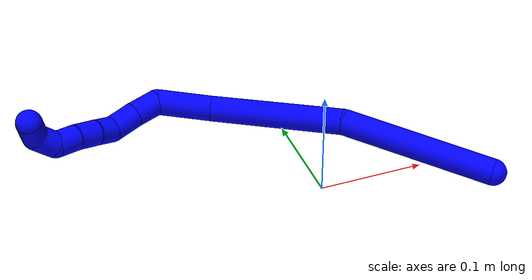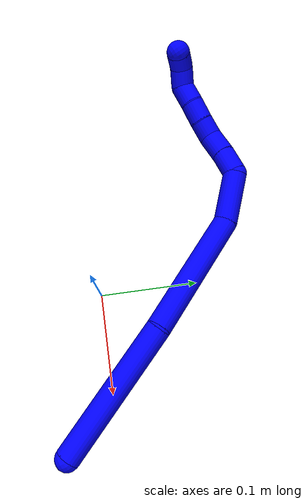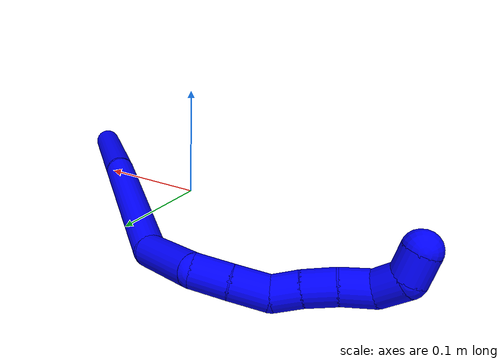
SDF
<sdf version="1.7">
 <world name="default">
  <plugin name="TubeGeneratorPlugin" filename="libtube_generator_plugin.so"/>
  <model name="photoneo_s_sensor">
   <static>1</static>
   <pose>0 0 2 1.57079 1.57079 3.14159</pose>
   <link name="link">
    <inertial><mass>0.1</mass></inertial>
    <sensor name="sensor" type="depth">
     <update_rate>30</update_rate>
     <camera>
      <horizontal_fov>1.22</horizontal_fov>
      <image><width>1920</width><height>1200</height><format>B8G8R8</format></image>
      <clip><near>0.1</near><far>4</far></clip>
      <depth_camera><output>points</output></depth_camera>
     </camera>
     <plugin name="camera_plugin" filename="libgazebo_ros_depth_camera.so">
      <baseline>0.2</baseline>
      <alwaysOn>1</alwaysOn>
      <updateRate>0.0</updateRate>
      <cameraName>camera_ir</cameraName>
      <imageTopicName>/camera/color/image_raw</imageTopicName>
      <cameraInfoTopicName>/camera/color/camera_info</cameraInfoTopicName>
      <depthImageTopicName>/camera/depth/image_raw</depthImageTopicName>
      <depthImageCameraInfoTopicName>/camera/depth/camera_info</depthImageCameraInfoTopicName>
      <pointCloudTopicName>/camera/depth/points</pointCloudTopicName>
      <frameName>fr_optical</frameName>
      <pointCloudCutoff>0.1</pointCloudCutoff>
      <pointCloudCutoffMax>2.0</pointCloudCutoffMax>
      <distortionK1>0</distortionK1>
      <distortionK2>0</distortionK2>
      <distortionK3>0</distortionK3>
      <distortionT1>0</distortionT1>
      <distortionT2>0</distortionT2>
      <CxPrime>0</CxPrime>
      <Cx>0</Cx>
      <Cy>0</Cy>
      <focalLength>0</focalLength>
      <hackBaseline>0</hackBaseline>
     </plugin>
    </sensor>
   </link>
  </model>
  <gravity>0 0 -9.8</gravity>
  <magnetic_field>6e-06 2.3e-05 -4.2e-05</magnetic_field>
  <atmosphere type="adiabatic"/>
  <physics name="default_physics" default="0" type="ode">
   <max_step_size>0.003</max_step_size>
   <real_time_factor>1</real_time_factor>
   <real_time_update_rate>1000</real_time_update_rate>
   <max_contacts>10000</max_contacts>
   <ode>
    <solver>
     <type>quick</type>
     <iters>100</iters>
     <sor>1.3</sor>
     <use_dynamic_moi_rescaling>0</use_dynamic_moi_rescaling>
    </solver>
    <constraints>
     <contact_max_correcting_vel>0</contact_max_correcting_vel>
     <contact_surface_layer>0.001</contact_surface_layer>
     <cfm>0</cfm>
     <erp>0.2</erp>
    </constraints>
   </ode>
  </physics>
  <scene><ambient>0.4 0.4 0.4 1</ambient><background>0.7 0.7 0.7 1</background><shadows>0</shadows></scene>
  <audio><device>default</device></audio>
  <spherical_coordinates>
   <surface_model>EARTH_WGS84</surface_model>
   <latitude_deg>0</latitude_deg>
   <longitude_deg>0</longitude_deg>
   <elevation>0</elevation>
   <heading_deg>0</heading_deg>
  </spherical_coordinates>
  <model name="bin">
   <static>1</static>
   <link name="bottom">
    <collision name="collision-bottom">
     <pose>0 0 -0.01 0 -0 0</pose>
     <geometry><box><size>0.8 0.6 0.02</size></box></geometry>
     <surface>
      <friction><ode><mu>100</mu><mu2>100</mu2></ode></friction>
      <contact><collide_bitmask>65535</collide_bitmask></contact>
     </surface>
    </collision>
   </link>
   <link name="west_wall">
    <collision name="collision-west_wall">
     <pose>-0.41 0 0.1 0 -0 0</pose>
     <geometry><box><size>0.02 0.6 0.2</size></box></geometry>
     <surface>
      <friction><ode><mu>100</mu><mu2>100</mu2></ode></friction>
      <contact><collide_bitmask>65535</collide_bitmask></contact>
     </surface>
    </collision>
   </link>
   <link name="east_wall">
    <collision name="collision-east_wall">
     <pose>0.41 0 0.1 0 -0 0</pose>
     <geometry><box><size>0.02 0.6 0.2</size></box></geometry>
     <surface>
      <friction><ode><mu>100</mu><mu2>100</mu2></ode></friction>
      <contact><collide_bitmask>65535</collide_bitmask></contact>
     </surface>
    </collision>
   </link>
   <link name="south_wall">
    <collision name="collision-south_wall">
     <pose>0 -0.31 0.1 0 -0 0</pose>
     <geometry><box><size>0.8 0.02 0.2</size></box></geometry>
     <surface>
      <friction><ode><mu>100</mu><mu2>100</mu2></ode></friction>
      <contact><collide_bitmask>65535</collide_bitmask></contact>
     </surface>
    </collision>
   </link>
   <link name="north_wall">
    <collision name="collision-north_wall">
     <pose>0 0.31 0.1 0 -0 0</pose>
     <geometry><box><size>0.8 0.02 0.2</size></box></geometry>
     <surface>
      <friction><ode><mu>100</mu><mu2>100</mu2></ode></friction>
      <contact><collide_bitmask>65535</collide_bitmask></contact>
     </surface>
    </collision>
   </link>
  </model>
  <model name="1">
   <static>0</static>
   <link name="1">
    <collision name="collision-cylinder-e_1_1_4">
     <pose>-0.029818 0.01386 0.066135 -0.206588 -0.41558 0.043704</pose>
     <geometry><cylinder><radius>0.0125</radius><length>0.147717</length></cylinder></geometry>
     <surface>
      <friction><ode><mu>1.16</mu><mu2>1.16</mu2><slip1>0</slip1><slip2>0</slip2></ode></friction>
      <contact><ode><kp>1e+06</kp><kd>1</kd><max_vel>0</max_vel><min_depth>0.001</min_depth></ode></contact>
     </surface>
    </collision>
    <visual name="visual-cylinder-e_1_1_4">
     <pose>-0.029818 0.01386 0.066135 -0.206588 -0.41558 0.043704</pose>
     <geometry><cylinder><radius>0.0125</radius><length>0.147717</length></cylinder></geometry>
     <material><ambient>0 0 1 1</ambient></material>
    </visual>
    <collision name="collision-cylinder-e_2_4_5">
     <pose>-0.088047 0.055221 0.187344 -0.463119 -0.432395 0.10348</pose>
     <geometry><cylinder><radius>0.0125</radius><length>0.135596</length></cylinder></geometry>
     <surface>
      <friction><ode><mu>1.16</mu><mu2>1.16</mu2><slip1>0</slip1><slip2>0</slip2></ode></friction>
      <contact><ode><kp>1e+06</kp><kd>1</kd><max_vel>0</max_vel><min_depth>0.001</min_depth></ode></contact>
     </surface>
    </collision>
    <visual name="visual-cylinder-e_2_4_5">
     <pose>-0.088047 0.055221 0.187344 -0.463119 -0.432395 0.10348</pose>
     <geometry><cylinder><radius>0.0125</radius><length>0.135596</length></cylinder></geometry>
     <material><ambient>0 0 1 1</ambient></material>
    </visual>
    <collision name="collision-cylinder-e_3_5_6">
     <pose>-0.136453 0.08639 0.260605 -0.199036 -0.822794 0.087071</pose>
     <geometry><cylinder><radius>0.0125</radius><length>0.054556</length></cylinder></geometry>
     <surface>
      <friction><ode><mu>1.16</mu><mu2>1.16</mu2><slip1>0</slip1><slip2>0</slip2></ode></friction>
      <contact><ode><kp>1e+06</kp><kd>1</kd><max_vel>0</max_vel><min_depth>0.001</min_depth></ode></contact>
     </surface>
    </collision>
    <visual name="visual-cylinder-e_3_5_6">
     <pose>-0.136453 0.08639 0.260605 -0.199036 -0.822794 0.087071</pose>
     <geometry><cylinder><radius>0.0125</radius><length>0.054556</length></cylinder></geometry>
     <material><ambient>0 0 1 1</ambient></material>
    </visual>
    <collision name="collision-cylinder-e_4_6_7">
     <pose>-0.169238 0.094359 0.279352 -1.44155 -1.24386 1.12393</pose>
     <geometry><cylinder><radius>0.0125</radius><length>0.027008</length></cylinder></geometry>
     <surface>
      <friction><ode><mu>1.16</mu><mu2>1.16</mu2><slip1>0</slip1><slip2>0</slip2></ode></friction>
      <contact><ode><kp>1e+06</kp><kd>1</kd><max_vel>0</max_vel><min_depth>0.001</min_depth></ode></contact>
     </surface>
    </collision>
    <visual name="visual-cylinder-e_4_6_7">
     <pose>-0.169238 0.094359 0.279352 -1.44155 -1.24386 1.12393</pose>
     <geometry><cylinder><radius>0.0125</radius><length>0.027008</length></cylinder></geometry>
     <material><ambient>0 0 1 1</ambient></material>
    </visual>
    <collision name="collision-cylinder-e_5_7_8">
     <pose>-0.194793 0.103104 0.279383 -1.68904 -1.23364 1.34747</pose>
     <geometry><cylinder><radius>0.0125</radius><length>0.027057</length></cylinder></geometry>
     <surface>
      <friction><ode><mu>1.16</mu><mu2>1.16</mu2><slip1>0</slip1><slip2>0</slip2></ode></friction>
      <contact><ode><kp>1e+06</kp><kd>1</kd><max_vel>0</max_vel><min_depth>0.001</min_depth></ode></contact>
     </surface>
    </collision>
    <visual name="visual-cylinder-e_5_7_8">
     <pose>-0.194793 0.103104 0.279383 -1.68904 -1.23364 1.34747</pose>
     <geometry><cylinder><radius>0.0125</radius><length>0.027057</length></cylinder></geometry>
     <material><ambient>0 0 1 1</ambient></material>
    </visual>
    <collision name="collision-cylinder-e_6_8_9">
     <pose>-0.217815 0.106095 0.279088 1.41158 -1.42826 -1.27241</pose>
     <geometry><cylinder><radius>0.0125</radius><length>0.02072</length></cylinder></geometry>
     <surface>
      <friction><ode><mu>1.16</mu><mu2>1.16</mu2><slip1>0</slip1><slip2>0</slip2></ode></friction>
      <contact><ode><kp>1e+06</kp><kd>1</kd><max_vel>0</max_vel><min_depth>0.001</min_depth></ode></contact>
     </surface>
    </collision>
    <visual name="visual-cylinder-e_6_8_9">
     <pose>-0.217815 0.106095 0.279088 1.41158 -1.42826 -1.27241</pose>
     <geometry><cylinder><radius>0.0125</radius><length>0.02072</length></cylinder></geometry>
     <material><ambient>0 0 1 1</ambient></material>
    </visual>
    <collision name="collision-cylinder-e_7_9_10">
     <pose>-0.239355 0.104096 0.280107 0.607556 -1.48625 -0.560891</pose>
     <geometry><cylinder><radius>0.0125</radius><length>0.022652</length></cylinder></geometry>
     <surface>
      <friction><ode><mu>1.16</mu><mu2>1.16</mu2><slip1>0</slip1><slip2>0</slip2></ode></friction>
      <contact><ode><kp>1e+06</kp><kd>1</kd><max_vel>0</max_vel><min_depth>0.001</min_depth></ode></contact>
     </surface>
    </collision>
    <visual name="visual-cylinder-e_7_9_10">
     <pose>-0.239355 0.104096 0.280107 0.607556 -1.48625 -0.560891</pose>
     <geometry><cylinder><radius>0.0125</radius><length>0.022652</length></cylinder></geometry>
     <material><ambient>0 0 1 1</ambient></material>
    </visual>
    <collision name="collision-cylinder-e_8_10_11">
     <pose>-0.261796 0.104439 0.281356 -1.08972 -1.48107 1.01179</pose>
     <geometry><cylinder><radius>0.0125</radius><length>0.022401</length></cylinder></geometry>
     <surface>
      <friction><ode><mu>1.16</mu><mu2>1.16</mu2><slip1>0</slip1><slip2>0</slip2></ode></friction>
      <contact><ode><kp>1e+06</kp><kd>1</kd><max_vel>0</max_vel><min_depth>0.001</min_depth></ode></contact>
     </surface>
    </collision>
    <visual name="visual-cylinder-e_8_10_11">
     <pose>-0.261796 0.104439 0.281356 -1.08972 -1.48107 1.01179</pose>
     <geometry><cylinder><radius>0.0125</radius><length>0.022401</length></cylinder></geometry>
     <material><ambient>0 0 1 1</ambient></material>
    </visual>
    <collision name="collision-cylinder-e_9_11_12">
     <pose>-0.281824 0.10115 0.286713 0.706913 -0.943351 -0.372034</pose>
     <geometry><cylinder><radius>0.0125</radius><length>0.02192</length></cylinder></geometry>
     <surface>
      <friction><ode><mu>1.16</mu><mu2>1.16</mu2><slip1>0</slip1><slip2>0</slip2></ode></friction>
      <contact><ode><kp>1e+06</kp><kd>1</kd><max_vel>0</max_vel><min_depth>0.001</min_depth></ode></contact>
     </surface>
    </collision>
    <visual name="visual-cylinder-e_9_11_12">
     <pose>-0.281824 0.10115 0.286713 0.706913 -0.943351 -0.372034</pose>
     <geometry><cylinder><radius>0.0125</radius><length>0.02192</length></cylinder></geometry>
     <material><ambient>0 0 1 1</ambient></material>
    </visual>
    <collision name="collision-cylinder-e_10_12_2">
     <pose>-0.29511 0.087925 0.293177 1.39881 -0.448073 -0.378791</pose>
     <geometry><cylinder><radius>0.0125</radius><length>0.020374</length></cylinder></geometry>
     <surface>
      <friction><ode><mu>1.16</mu><mu2>1.16</mu2><slip1>0</slip1><slip2>0</slip2></ode></friction>
      <contact><ode><kp>1e+06</kp><kd>1</kd><max_vel>0</max_vel><min_depth>0.001</min_depth></ode></contact>
     </surface>
    </collision>
    <visual name="visual-cylinder-e_10_12_2">
     <pose>-0.29511 0.087925 0.293177 1.39881 -0.448073 -0.378791</pose>
     <geometry><cylinder><radius>0.0125</radius><length>0.020374</length></cylinder></geometry>
     <material><ambient>0 0 1 1</ambient></material>
    </visual>
    <collision name="collision-sphere-2">
     <pose>-0.299523 0.078879 0.294749 0 -0 0</pose>
     <geometry><sphere><radius>0.0125</radius></sphere></geometry>
     <surface>
      <friction><ode><mu>1.16</mu><mu2>1.16</mu2><slip1>0</slip1><slip2>0</slip2></ode></friction>
      <contact><ode><kp>1e+06</kp><kd>1</kd><max_vel>0</max_vel><min_depth>0.001</min_depth></ode></contact>
     </surface>
    </collision>
    <visual name="visual-sphere-2">
     <pose>-0.299523 0.078879 0.294749 0 -0 0</pose>
     <geometry><sphere><radius>0.0125</radius></sphere></geometry>
     <material><ambient>0 0 1 1</ambient></material>
    </visual>
    <collision name="collision-sphere-12">
     <pose>-0.290697 0.096971 0.291606 0 -0 0</pose>
     <geometry><sphere><radius>0.0125</radius></sphere></geometry>
     <surface>
      <friction><ode><mu>1.16</mu><mu2>1.16</mu2><slip1>0</slip1><slip2>0</slip2></ode></friction>
      <contact><ode><kp>1e+06</kp><kd>1</kd><max_vel>0</max_vel><min_depth>0.001</min_depth></ode></contact>
     </surface>
    </collision>
    <visual name="visual-sphere-12">
     <pose>-0.290697 0.096971 0.291606 0 -0 0</pose>
     <geometry><sphere><radius>0.0125</radius></sphere></geometry>
     <material><ambient>0 0 1 1</ambient></material>
    </visual>
    <collision name="collision-sphere-11">
     <pose>-0.272951 0.105329 0.281821 0 -0 0</pose>
     <geometry><sphere><radius>0.0125</radius></sphere></geometry>
     <surface>
      <friction><ode><mu>1.16</mu><mu2>1.16</mu2><slip1>0</slip1><slip2>0</slip2></ode></friction>
      <contact><ode><kp>1e+06</kp><kd>1</kd><max_vel>0</max_vel><min_depth>0.001</min_depth></ode></contact>
     </surface>
    </collision>
    <visual name="visual-sphere-11">
     <pose>-0.272951 0.105329 0.281821 0 -0 0</pose>
     <geometry><sphere><radius>0.0125</radius></sphere></geometry>
     <material><ambient>0 0 1 1</ambient></material>
    </visual>
    <collision name="collision-sphere-10">
     <pose>-0.25064 0.10355 0.280892 0 -0 0</pose>
     <geometry><sphere><radius>0.0125</radius></sphere></geometry>
     <surface>
      <friction><ode><mu>1.16</mu><mu2>1.16</mu2><slip1>0</slip1><slip2>0</slip2></ode></friction>
      <contact><ode><kp>1e+06</kp><kd>1</kd><max_vel>0</max_vel><min_depth>0.001</min_depth></ode></contact>
     </surface>
    </collision>
    <visual name="visual-sphere-10">
     <pose>-0.25064 0.10355 0.280892 0 -0 0</pose>
     <geometry><sphere><radius>0.0125</radius></sphere></geometry>
     <material><ambient>0 0 1 1</ambient></material>
    </visual>
    <collision name="collision-sphere-9">
     <pose>-0.22807 0.104642 0.279321 0 -0 0</pose>
     <geometry><sphere><radius>0.0125</radius></sphere></geometry>
     <surface>
      <friction><ode><mu>1.16</mu><mu2>1.16</mu2><slip1>0</slip1><slip2>0</slip2></ode></friction>
      <contact><ode><kp>1e+06</kp><kd>1</kd><max_vel>0</max_vel><min_depth>0.001</min_depth></ode></contact>
     </surface>
    </collision>
    <visual name="visual-sphere-9">
     <pose>-0.22807 0.104642 0.279321 0 -0 0</pose>
     <geometry><sphere><radius>0.0125</radius></sphere></geometry>
     <material><ambient>0 0 1 1</ambient></material>
    </visual>
    <collision name="collision-sphere-4">
     <pose>-0.059636 0.027721 0.13227 0 -0 0</pose>
     <geometry><sphere><radius>0.0125</radius></sphere></geometry>
     <surface>
      <friction><ode><mu>1.16</mu><mu2>1.16</mu2><slip1>0</slip1><slip2>0</slip2></ode></friction>
      <contact><ode><kp>1e+06</kp><kd>1</kd><max_vel>0</max_vel><min_depth>0.001</min_depth></ode></contact>
     </surface>
    </collision>
    <visual name="visual-sphere-4">
     <pose>-0.059636 0.027721 0.13227 0 -0 0</pose>
     <geometry><sphere><radius>0.0125</radius></sphere></geometry>
     <material><ambient>0 0 1 1</ambient></material>
    </visual>
    <collision name="collision-sphere-1">
     <geometry><sphere><radius>0.0125</radius></sphere></geometry>
     <surface>
      <friction><ode><mu>1.16</mu><mu2>1.16</mu2><slip1>0</slip1><slip2>0</slip2></ode></friction>
      <contact><ode><kp>1e+06</kp><kd>1</kd><max_vel>0</max_vel><min_depth>0.001</min_depth></ode></contact>
     </surface>
    </collision>
    <visual name="visual-sphere-1">
     <geometry><sphere><radius>0.0125</radius></sphere></geometry>
     <material><ambient>0 0 1 1</ambient></material>
    </visual>
    <collision name="collision-sphere-8">
     <pose>-0.20756 0.107548 0.278855 0 -0 0</pose>
     <geometry><sphere><radius>0.0125</radius></sphere></geometry>
     <surface>
      <friction><ode><mu>1.16</mu><mu2>1.16</mu2><slip1>0</slip1><slip2>0</slip2></ode></friction>
      <contact><ode><kp>1e+06</kp><kd>1</kd><max_vel>0</max_vel><min_depth>0.001</min_depth></ode></contact>
     </surface>
    </collision>
    <visual name="visual-sphere-8">
     <pose>-0.20756 0.107548 0.278855 0 -0 0</pose>
     <geometry><sphere><radius>0.0125</radius></sphere></geometry>
     <material><ambient>0 0 1 1</ambient></material>
    </visual>
    <collision name="collision-sphere-5">
     <pose>-0.116457 0.082722 0.242417 0 -0 0</pose>
     <geometry><sphere><radius>0.0125</radius></sphere></geometry>
     <surface>
      <friction><ode><mu>1.16</mu><mu2>1.16</mu2><slip1>0</slip1><slip2>0</slip2></ode></friction>
      <contact><ode><kp>1e+06</kp><kd>1</kd><max_vel>0</max_vel><min_depth>0.001</min_depth></ode></contact>
     </surface>
    </collision>
    <visual name="visual-sphere-5">
     <pose>-0.116457 0.082722 0.242417 0 -0 0</pose>
     <geometry><sphere><radius>0.0125</radius></sphere></geometry>
     <material><ambient>0 0 1 1</ambient></material>
    </visual>
    <collision name="collision-sphere-6">
     <pose>-0.15645 0.090059 0.278793 0 -0 0</pose>
     <geometry><sphere><radius>0.0125</radius></sphere></geometry>
     <surface>
      <friction><ode><mu>1.16</mu><mu2>1.16</mu2><slip1>0</slip1><slip2>0</slip2></ode></friction>
      <contact><ode><kp>1e+06</kp><kd>1</kd><max_vel>0</max_vel><min_depth>0.001</min_depth></ode></contact>
     </surface>
    </collision>
    <visual name="visual-sphere-6">
     <pose>-0.15645 0.090059 0.278793 0 -0 0</pose>
     <geometry><sphere><radius>0.0125</radius></sphere></geometry>
     <material><ambient>0 0 1 1</ambient></material>
    </visual>
    <collision name="collision-sphere-7">
     <pose>-0.182027 0.09866 0.279911 0 -0 0</pose>
     <geometry><sphere><radius>0.0125</radius></sphere></geometry>
     <surface>
      <friction><ode><mu>1.16</mu><mu2>1.16</mu2><slip1>0</slip1><slip2>0</slip2></ode></friction>
      <contact><ode><kp>1e+06</kp><kd>1</kd><max_vel>0</max_vel><min_depth>0.001</min_depth></ode></contact>
     </surface>
    </collision>
    <visual name="visual-sphere-7">
     <pose>-0.182027 0.09866 0.279911 0 -0 0</pose>
     <geometry><sphere><radius>0.0125</radius></sphere></geometry>
     <material><ambient>0 0 1 1</ambient></material>
    </visual>
    <inertial>
     <pose>-0.123237 0.060982 0.190364 0 -0 0</pose>
     <mass>0.5</mass>
     <inertia>
      <ixx>0.000466</ixx>
      <ixy>0</ixy>
      <ixz>0</ixz>
      <iyy>0.000529</iyy>
      <iyz>0</iyz>
      <izz>0.000107</izz>
     </inertia>
    </inertial>
   </link>
   <pose>0.15068 -0.047956 0.012473 -1.31538 0.158026 0.404576</pose>
  </model>
 </world>
</sdf>
